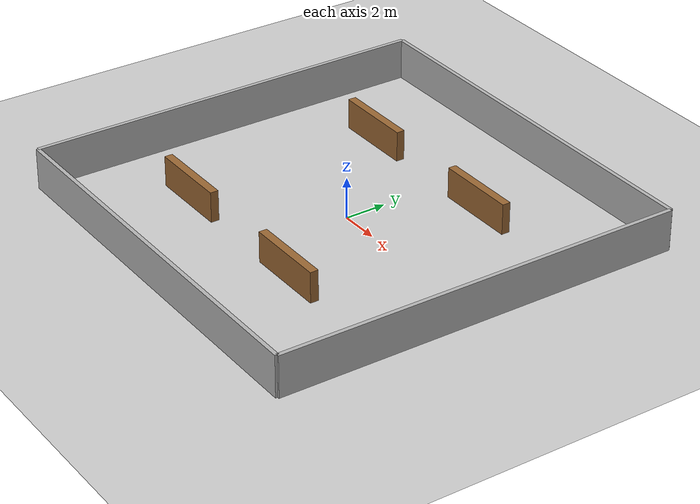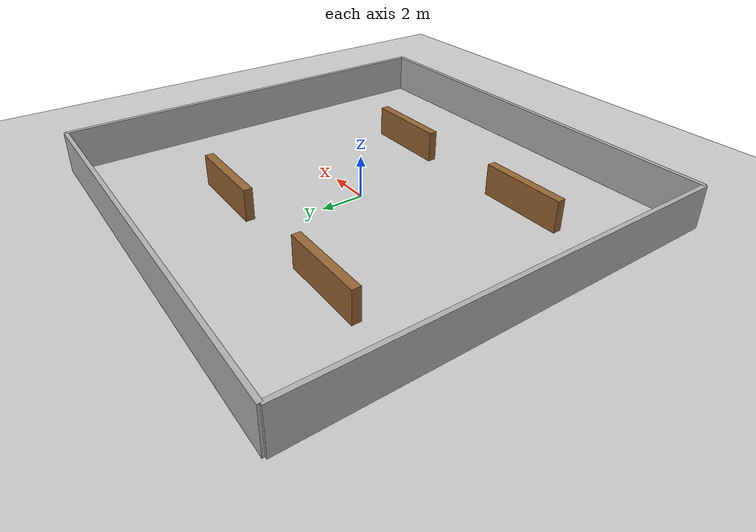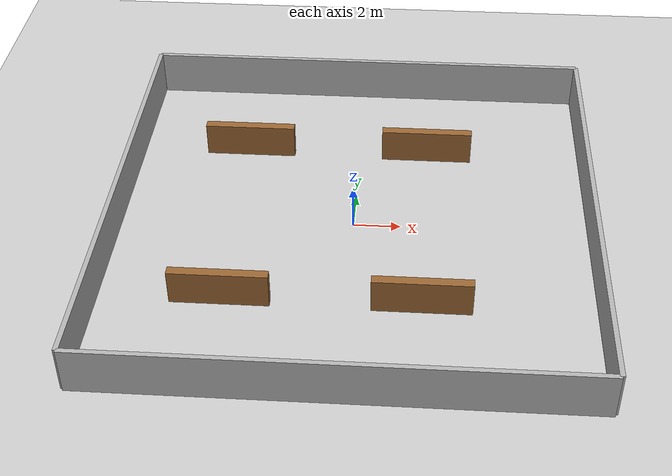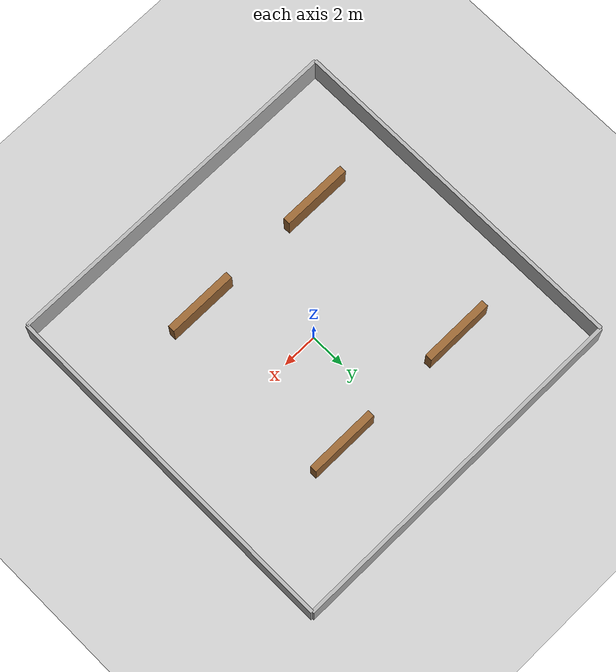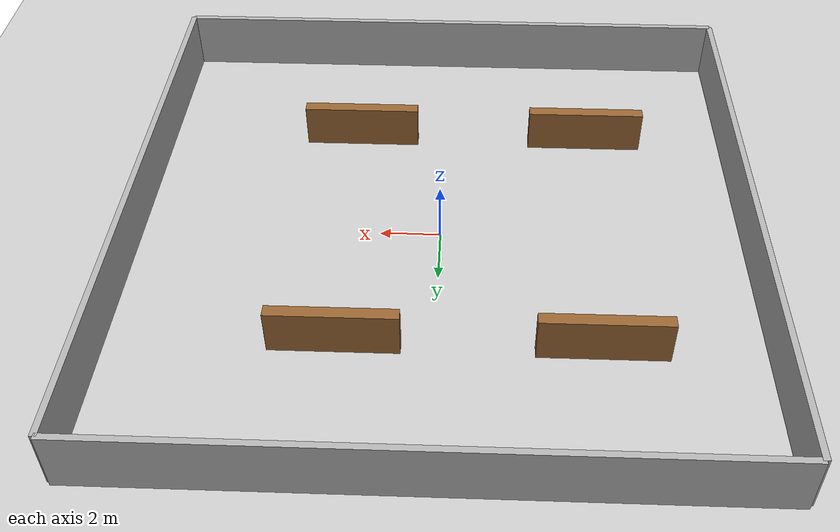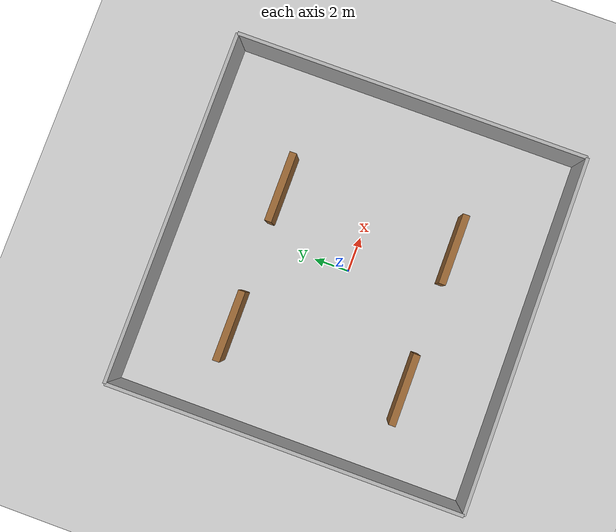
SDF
<?xml version="1.0" ?>
<sdf version="1.8">
  <world name="warehouse">

    <physics name="1ms" type="ignored">
      <max_step_size>0.001</max_step_size>
      <real_time_factor>1.0</real_time_factor>
    </physics>

    <plugin filename="gz-sim-physics-system"
            name="gz::sim::systems::Physics"/>
    <plugin filename="gz-sim-user-commands-system"
            name="gz::sim::systems::UserCommands"/>
    <plugin filename="gz-sim-scene-broadcaster-system"
            name="gz::sim::systems::SceneBroadcaster"/>
    <plugin filename="gz-sim-sensors-system"
            name="gz::sim::systems::Sensors">
      <render_engine>ogre2</render_engine>
    </plugin>

    <!-- Light -->
    <light type="directional" name="sun">
      <cast_shadows>true</cast_shadows>
      <pose>0 0 10 0 0 0</pose>
      <diffuse>0.8 0.8 0.8 1</diffuse>
      <specular>0.2 0.2 0.2 1</specular>
      <attenuation>
        <range>1000</range>
        <constant>0.9</constant>
        <linear>0.01</linear>
        <quadratic>0.001</quadratic>
      </attenuation>
      <direction>-0.5 0.1 -0.9</direction>
    </light>

    <!-- Ground Plane -->
    <model name="ground_plane">
      <static>true</static>
      <link name="link">
        <collision name="collision">
          <geometry>
            <plane>
              <normal>0 0 1</normal>
              <size>50 50</size>
            </plane>
          </geometry>
        </collision>
        <visual name="visual">
          <geometry>
            <plane>
              <normal>0 0 1</normal>
              <size>50 50</size>
            </plane>
          </geometry>
          <material>
            <ambient>0.8 0.8 0.8 1</ambient>
            <diffuse>0.8 0.8 0.8 1</diffuse>
          </material>
        </visual>
      </link>
    </model>

    <!-- Warehouse Walls -->
    <!-- North Wall -->
    <model name="north_wall">
      <static>true</static>
      <pose>0 10 1 0 0 0</pose>
      <link name="link">
        <collision name="collision">
          <geometry><box><size>20 0.2 2</size></box></geometry>
        </collision>
        <visual name="visual">
          <geometry><box><size>20 0.2 2</size></box></geometry>
          <material><ambient>0.7 0.7 0.7 1</ambient></material>
        </visual>
      </link>
    </model>

    <!-- South Wall -->
    <model name="south_wall">
      <static>true</static>
      <pose>0 -10 1 0 0 0</pose>
      <link name="link">
        <collision name="collision">
          <geometry><box><size>20 0.2 2</size></box></geometry>
        </collision>
        <visual name="visual">
          <geometry><box><size>20 0.2 2</size></box></geometry>
          <material><ambient>0.7 0.7 0.7 1</ambient></material>
        </visual>
      </link>
    </model>

    <!-- East Wall -->
    <model name="east_wall">
      <static>true</static>
      <pose>10 0 1 0 0 0</pose>
      <link name="link">
        <collision name="collision">
          <geometry><box><size>0.2 20 2</size></box></geometry>
        </collision>
        <visual name="visual">
          <geometry><box><size>0.2 20 2</size></box></geometry>
          <material><ambient>0.7 0.7 0.7 1</ambient></material>
        </visual>
      </link>
    </model>

    <!-- West Wall -->
    <model name="west_wall">
      <static>true</static>
      <pose>-10 0 1 0 0 0</pose>
      <link name="link">
        <collision name="collision">
          <geometry><box><size>0.2 20 2</size></box></geometry>
        </collision>
        <visual name="visual">
          <geometry><box><size>0.2 20 2</size></box></geometry>
          <material><ambient>0.7 0.7 0.7 1</ambient></material>
        </visual>
      </link>
    </model>

    <!-- Shelf Row 1 -->
    <model name="shelf_1">
      <static>true</static>
      <pose>-5 5 0.75 0 0 0</pose>
      <link name="link">
        <collision name="collision">
          <geometry><box><size>4 0.4 1.5</size></box></geometry>
        </collision>
        <visual name="visual">
          <geometry><box><size>4 0.4 1.5</size></box></geometry>
          <material><ambient>0.6 0.4 0.2 1</ambient></material>
        </visual>
      </link>
    </model>

    <model name="shelf_2">
      <static>true</static>
      <pose>-5 -5 0.75 0 0 0</pose>
      <link name="link">
        <collision name="collision">
          <geometry><box><size>4 0.4 1.5</size></box></geometry>
        </collision>
        <visual name="visual">
          <geometry><box><size>4 0.4 1.5</size></box></geometry>
          <material><ambient>0.6 0.4 0.2 1</ambient></material>
        </visual>
      </link>
    </model>

    <model name="shelf_3">
      <static>true</static>
      <pose>3 5 0.75 0 0 0</pose>
      <link name="link">
        <collision name="collision">
          <geometry><box><size>4 0.4 1.5</size></box></geometry>
        </collision>
        <visual name="visual">
          <geometry><box><size>4 0.4 1.5</size></box></geometry>
          <material><ambient>0.6 0.4 0.2 1</ambient></material>
        </visual>
      </link>
    </model>

    <model name="shelf_4">
      <static>true</static>
      <pose>3 -5 0.75 0 0 0</pose>
      <link name="link">
        <collision name="collision">
          <geometry><box><size>4 0.4 1.5</size></box></geometry>
        </collision>
        <visual name="visual">
          <geometry><box><size>4 0.4 1.5</size></box></geometry>
          <material><ambient>0.6 0.4 0.2 1</ambient></material>
        </visual>
      </link>
    </model>

  </world>
</sdf>
